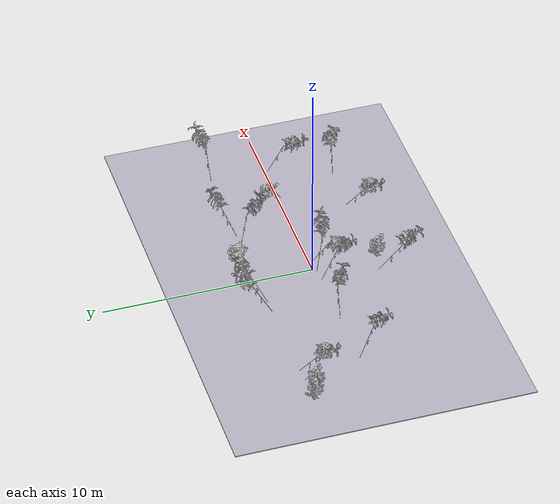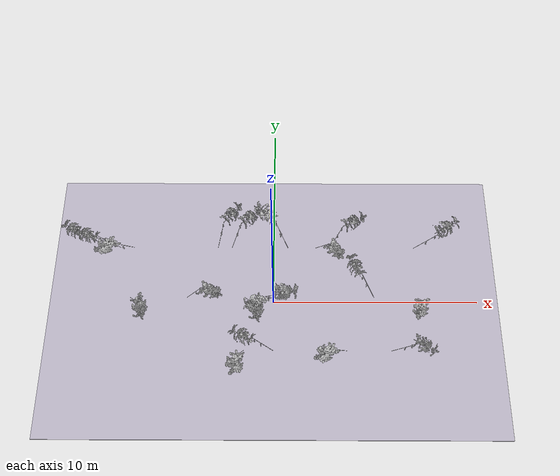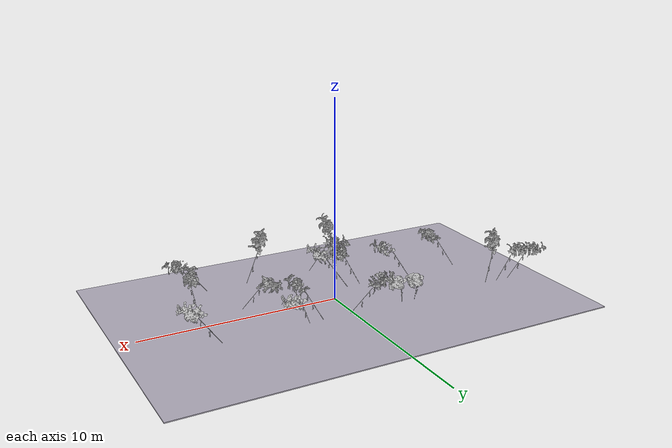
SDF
<sdf version="1.7">
 <world name="field">
  <light name="sun" type="directional">
   <pose>0 0 10 0 -0 0</pose>
   <diffuse>0.8 0.8 0.8 1</diffuse>
   <specular>0.2 0.2 0.2 1</specular>
   <attenuation>
    <range>1000</range>
    <constant>0.9</constant>
    <linear>0.01</linear>
    <quadratic>0.001</quadratic>
   </attenuation>
   <direction>-0.5 0.1 -0.9</direction>
   <spot><inner_angle>0</inner_angle><outer_angle>0</outer_angle><falloff>0</falloff></spot>
  </light>
  <model name="ground_plane">
   <static>true</static>
   <link name="link">
    <collision name="collision">
     <geometry><box><size>22 14 0.05</size></box></geometry>
     <surface>
      <contact><collide_bitmask>65535</collide_bitmask></contact>
      <friction><ode><mu>100</mu><mu2>50</mu2></ode></friction>
     </surface>
    </collision>
    <visual name="visual">
     <cast_shadows>0</cast_shadows>
     <geometry><box><size>22 14 0.05</size></box></geometry>
     <material>
      <ambient>0.72 0.70 0.76 1</ambient>
      <diffuse>0.72 0.70 0.76 1</diffuse>
      <specular>0.3 0.3 0.3 1</specular>
     </material>
    </visual>
   </link>
  </model>
  <gravity>0 0 -9.81</gravity>
  <magnetic_field>6e-06 2.3e-05 -4.2e-05</magnetic_field>
  <atmosphere type="adiabatic"/>
  <physics type="ode">
   <max_step_size>0.001</max_step_size>
   <real_time_factor>1</real_time_factor>
   <real_time_update_rate>1000</real_time_update_rate>
  </physics>
  <scene><ambient>0.4 0.4 0.4 1</ambient><background>0.7 0.7 0.7 1</background><shadows>1</shadows></scene>
  <audio><device>default</device></audio>
  <spherical_coordinates>
   <surface_model>EARTH_WGS84</surface_model>
   <latitude_deg>0</latitude_deg>
   <longitude_deg>0</longitude_deg>
   <elevation>0</elevation>
   <heading_deg>0</heading_deg>
  </spherical_coordinates>
  <include>
   <uri>model://tomato_vine_repo_v4</uri>
   <name>vine_plant_10</name>
   <pose>-1.4 -2.8 0.5 0 0 16.93</pose>
  </include>
  <include>
   <uri>model://tomato_vine_repo_v10</uri>
   <name>vine_plant_12</name>
   <pose>0.0 -2.8 0.5 0 0 -15.81</pose>
  </include>
  <include>
   <uri>model://tomato_vine_repo_v4</uri>
   <name>vine_plant_17</name>
   <pose>3.5 -2.8 0.5 0 0 -8.90</pose>
  </include>
  <include>
   <uri>model://tomato_vine_repo_v10</uri>
   <name>vine_plant_20</name>
   <pose>5.6 -2.8 0.5 0 0 6.05</pose>
  </include>
  <include>
   <uri>model://tomato_vine_repo_v10</uri>
   <name>vine_plant_27</name>
   <pose>-7.0 0.0 0.5 0 0 -32.43</pose>
  </include>
  <include>
   <uri>model://tomato_vine_repo_v0</uri>
   <name>vine_plant_31</name>
   <pose>-4.2 0.0 0.5 0 0 -6.44</pose>
  </include>
  <include>
   <uri>model://tomato_vine_repo_v10</uri>
   <name>vine_plant_35</name>
   <pose>-1.4 0.0 0.5 0 0 -32.55</pose>
  </include>
  <include>
   <uri>model://tomato_vine_repo_v4</uri>
   <name>vine_plant_36</name>
   <pose>-0.7 0.0 0.5 0 0 -0.58</pose>
  </include>
  <include>
   <uri>model://tomato_vine_repo_v0</uri>
   <name>vine_plant_37</name>
   <pose>0.0 0.0 0.5 0 0 23.02</pose>
  </include>
  <include>
   <uri>model://tomato_vine_repo_v10</uri>
   <name>vine_plant_44</name>
   <pose>4.9 0.0 0.5 0 0 8.63</pose>
  </include>
  <include>
   <uri>model://tomato_vine_repo_v0</uri>
   <name>vine_plant_47</name>
   <pose>7.0 0.0 0.5 0 0 4.79</pose>
  </include>
  <include>
   <uri>model://tomato_vine_repo_v10</uri>
   <name>vine_plant_50</name>
   <pose>-8.4 2.8 0.5 0 0 -34.69</pose>
  </include>
  <include>
   <uri>model://tomato_vine_repo_v10</uri>
   <name>vine_plant_51</name>
   <pose>-7.7 2.8 0.5 0 0 34.63</pose>
  </include>
  <include>
   <uri>model://tomato_vine_repo_v4</uri>
   <name>vine_plant_52</name>
   <pose>-7.0 2.8 0.5 0 0 22.58</pose>
  </include>
  <include>
   <uri>model://tomato_vine_repo_v0</uri>
   <name>vine_plant_58</name>
   <pose>-2.8 2.8 0.5 0 0 19.99</pose>
  </include>
  <include>
   <uri>model://tomato_vine_repo_v0</uri>
   <name>vine_plant_59</name>
   <pose>-2.1 2.8 0.5 0 0 19.77</pose>
  </include>
  <include>
   <uri>model://tomato_vine_repo_v4</uri>
   <name>vine_plant_63</name>
   <pose>0.7 2.8 0.5 0 0 -35.42</pose>
  </include>
  <include>
   <uri>model://tomato_vine_repo_v0</uri>
   <name>vine_plant_65</name>
   <pose>2.1 2.8 0.5 0 0 30.75</pose>
  </include>
  <include>
   <uri>model://tomato_vine_repo_v0</uri>
   <name>vine_plant_66</name>
   <pose>2.8 2.8 0.5 0 0 0.69</pose>
  </include>
  <include>
   <uri>model://tomato_vine_repo_v4</uri>
   <name>vine_plant_72</name>
   <pose>7.0 2.8 0.5 0 0 37.66</pose>
  </include>
 </world>
</sdf>

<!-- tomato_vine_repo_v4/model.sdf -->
<sdf version="1.6">
  <model name="tomato_vine_repo_v4">
    <static>true</static>
    <link name="link">
      <collision name="collision_trunk">
        <geometry><cylinder><radius>0.014</radius><length>1.776</length></cylinder></geometry>
        <pose>0.5245 0 0.7163 0 0.6320 0</pose>
      </collision>
      <visual name="plant">
        <geometry>
          <mesh>
            <uri>model://tomato_vine_repo_v4/meshes/tomato_vine_repo_v4.dae</uri>
          </mesh>
        </geometry>
      </visual>
    </link>
  </model>
</sdf>

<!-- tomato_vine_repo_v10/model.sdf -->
<sdf version="1.6">
  <model name="tomato_vine_repo_v10">
    <static>true</static>
    <link name="link">
      <collision name="collision_trunk">
        <geometry><cylinder><radius>0.014</radius><length>1.670</length></cylinder></geometry>
        <pose>0.5102 0 0.6612 0 0.6572 0</pose>
      </collision>
      <visual name="plant">
        <geometry>
          <mesh>
            <uri>model://tomato_vine_repo_v10/meshes/tomato_vine_repo_v10.dae</uri>
          </mesh>
        </geometry>
      </visual>
    </link>
  </model>
</sdf>

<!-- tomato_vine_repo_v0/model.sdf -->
<sdf version="1.6">
  <model name="tomato_vine_repo_v0">
    <static>true</static>
    <link name="link">
      <collision name="collision_trunk">
        <geometry><cylinder><radius>0.014</radius><length>1.552</length></cylinder></geometry>
        <pose>0.4139 0 0.6565 0 0.5625 0</pose>
      </collision>
      <visual name="plant">
        <geometry>
          <mesh>
            <uri>model://tomato_vine_repo_v0/meshes/tomato_vine_repo_v0.dae</uri>
          </mesh>
        </geometry>
      </visual>
    </link>
  </model>
</sdf>
